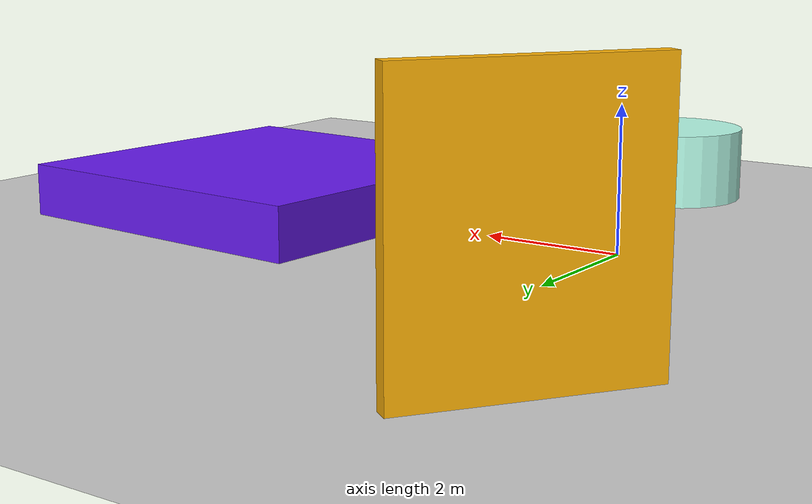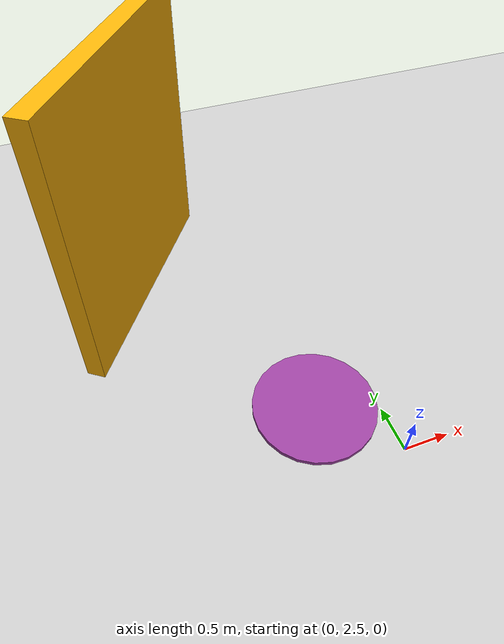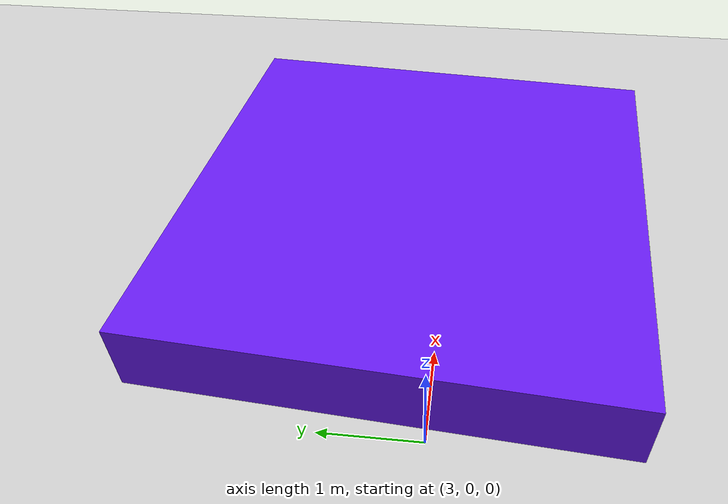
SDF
<sdf version="1.6">
 <world name="default">
  <atmosphere type="adiabatic"/>
  <wind><linear_velocity>0 0 0</linear_velocity></wind>
  <gravity>0 0 -9.8</gravity>
  <model name="dyn_box">
   <pose>-1.95648 5.67952 1.61918 0 -0 2.5273</pose>
   <static>0</static>
   <allow_auto_disable>0</allow_auto_disable>
   <link name="link">
    <collision name="collision">
     <geometry><box><size>0.210072 2.91872 3.23836</size></box></geometry>
     <max_contacts>20</max_contacts>
    </collision>
    <visual name="visual">
     <geometry><box><size>0.210072 2.91872 3.23836</size></box></geometry>
     <material>
      <ambient>0.996078 0.701961 0.0313725 1</ambient>
      <diffuse>0.996078431372549 0.7019607843137254 0.03137254901960784 1</diffuse>
     </material>
     <transparency>0.0</transparency>
    </visual>
    <inertial>
     <inertia>
      <ixx>1.0054532765900706</ixx>
      <iyy>0.5571190628818359</iyy>
      <izz>0.453003388218578</izz>
      <ixy>0.0</ixy>
      <ixz>0.0</ixz>
      <iyz>0.0</iyz>
     </inertia>
     <mass>0.6348266007803253</mass>
    </inertial>
   </link>
  </model>
  <model name="dyn_box_1">
   <pose>5.63115 0.33541 0.379971 0 -0 1.5008</pose>
   <static>0</static>
   <allow_auto_disable>0</allow_auto_disable>
   <link name="link">
    <collision name="collision">
     <geometry><box><size>4.90902 4.93011 0.759942</size></box></geometry>
     <max_contacts>20</max_contacts>
    </collision>
    <visual name="visual">
     <geometry><box><size>4.90902 4.93011 0.759942</size></box></geometry>
     <material>
      <ambient>0.4 0.101961 0.933333 1</ambient>
      <diffuse>0.4 0.10196078431372549 0.9333333333333333 1</diffuse>
     </material>
     <transparency>0.0</transparency>
    </visual>
    <inertial>
     <inertia>
      <ixx>1.2885011431420288</ixx>
      <iyy>1.2777526749059904</iyy>
      <izz>2.5064451706657658</izz>
      <ixy>0.0</ixy>
      <ixz>0.0</ixz>
      <iyz>0.0</iyz>
     </inertia>
     <mass>0.621375604587716</mass>
    </inertial>
   </link>
  </model>
  <model name="static_cylinder">
   <pose>-0.661552 3.27231 0.0235954 0 0 -2.52221</pose>
   <static>1</static>
   <allow_auto_disable>0</allow_auto_disable>
   <link name="link">
    <collision name="collision">
     <geometry>
      <cylinder><radius>0.6741767447532301</radius><length>0.0471908306235973</length></cylinder>
     </geometry>
     <max_contacts>20</max_contacts>
    </collision>
    <visual name="visual">
     <geometry>
      <cylinder><radius>0.6741767447532301</radius><length>0.0471908306235973</length></cylinder>
     </geometry>
     <material>
      <ambient>0.619608 0.262745 0.635294 1</ambient>
      <diffuse>0.6196078431372549 0.2627450980392157 0.6352941176470588 1</diffuse>
     </material>
     <transparency>0.0</transparency>
    </visual>
   </link>
  </model>
  <model name="static_cylinder_1">
   <pose>1.1918 -4.1683 0.548568 0 0 -0.17786</pose>
   <static>1</static>
   <allow_auto_disable>0</allow_auto_disable>
   <link name="link">
    <collision name="collision">
     <geometry>
      <cylinder><radius>1.0651173069361461</radius><length>1.0971359173935458</length></cylinder>
     </geometry>
     <max_contacts>20</max_contacts>
    </collision>
    <visual name="visual">
     <geometry>
      <cylinder><radius>1.0651173069361461</radius><length>1.0971359173935458</length></cylinder>
     </geometry>
     <material>
      <ambient>0.721569 1 0.921569 1</ambient>
      <diffuse>0.7215686274509804 1.0 0.9215686274509803 1</diffuse>
     </material>
     <transparency>0.0</transparency>
    </visual>
   </link>
  </model>
  <include>
   <uri>model://ceiling_6</uri>
   <pose>0 0 6 0 -0 0</pose>
   <name>ceiling_6</name>
   <static>1</static>
  </include>
  <include><uri>model://ground_plane</uri><name>ground_plane</name><static>1</static></include>
  <include><uri>model://sun</uri></include>
  <physics name="default_physics" default="0" type="ode">
   <gravity>0 0 -9.8066</gravity>
   <ode>
    <solver>
     <type>quick</type>
     <iters>10</iters>
     <sor>1.3</sor>
     <use_dynamic_moi_rescaling>0</use_dynamic_moi_rescaling>
    </solver>
    <constraints>
     <cfm>0</cfm>
     <erp>0.2</erp>
     <contact_max_correcting_vel>100</contact_max_correcting_vel>
     <contact_surface_layer>0.001</contact_surface_layer>
    </constraints>
   </ode>
   <max_step_size>0.004</max_step_size>
   <real_time_factor>1</real_time_factor>
   <real_time_update_rate>250</real_time_update_rate>
   <magnetic_field>6.0e-6 2.3e-5 -4.2e-5</magnetic_field>
  </physics>
  <scene>
   <ambient>0.8 0.8 0.8 1</ambient>
   <background>0.8 0.9 1 1</background>
   <shadows>false</shadows>
   <grid>false</grid>
   <origin_visual>false</origin_visual>
  </scene>
 </world>
</sdf>

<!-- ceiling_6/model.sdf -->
<sdf version="1.6">
  <model name="ceiling_6">
    <pose frame="">0 0 6 0 -0 0</pose>
    <static>1</static>
    <self_collide>0</self_collide>
    <allow_auto_disable>0</allow_auto_disable>
    <link name="mesh">
      <kinematic>0</kinematic>
      <gravity>1</gravity>
      <self_collide>0</self_collide>
      <collision name="collision">
        <geometry>
          <mesh>
            <uri>model://ceiling_6/meshes/xiEVzPppiS.stl</uri>
            <scale>1 1 1</scale>
          </mesh>
        </geometry>
        <pose frame="">3.56165 0.9256 -0.075 0 -0 0</pose>
        <max_contacts>20</max_contacts>
      </collision>
      <visual name="visual">
        <geometry>
          <mesh>
            <uri>model://ceiling_6/meshes/kyTvgpYsAJ.stl</uri>
            <scale>1 1 1</scale>
          </mesh>
        </geometry>
        <material>
          <ambient>0.792157 0.00392157 0.278431 1</ambient>
          <diffuse>0.792156862745098 0.00392156862745098 0.2784313725490196 1</diffuse>
        </material>
        <pose frame="">3.56165 0.9256 -0.075 0 -0 0</pose>
        <cast_shadows>1</cast_shadows>
        <transparency>0.0</transparency>
      </visual>
      <pose frame="">0 0 0 0 -0 0</pose>
    </link>
  </model>
</sdf>
